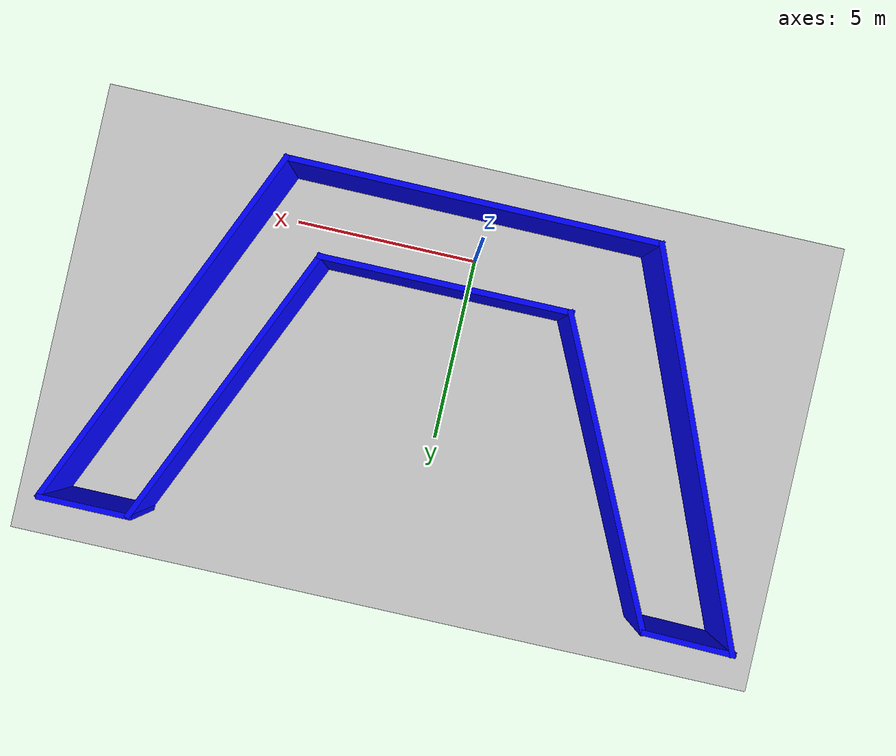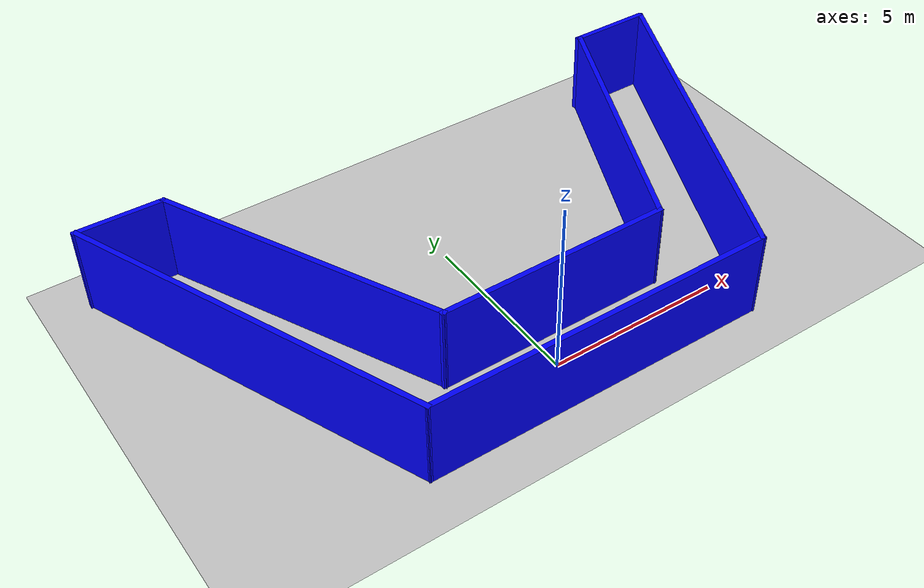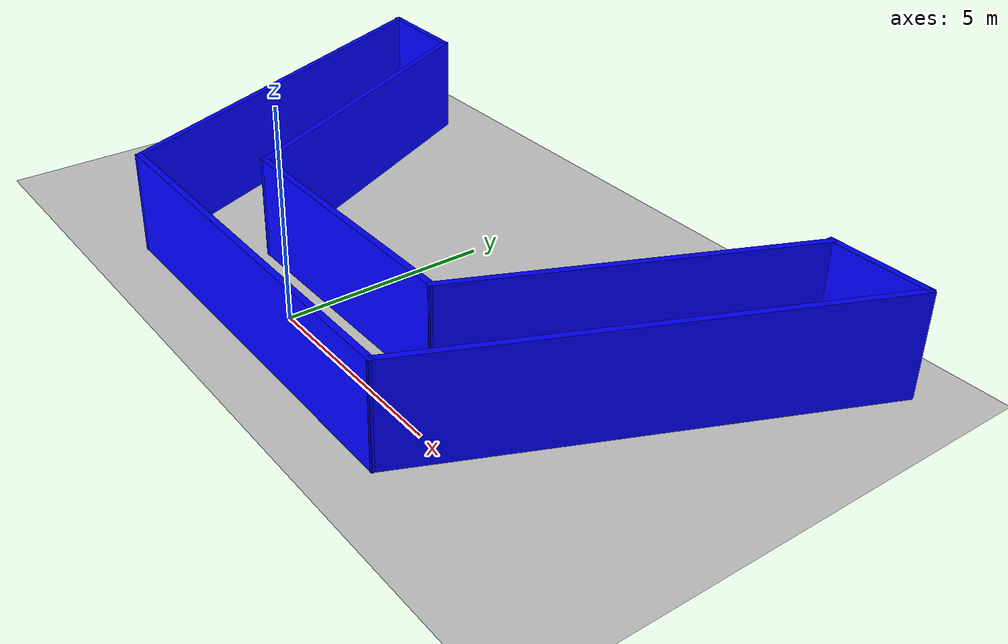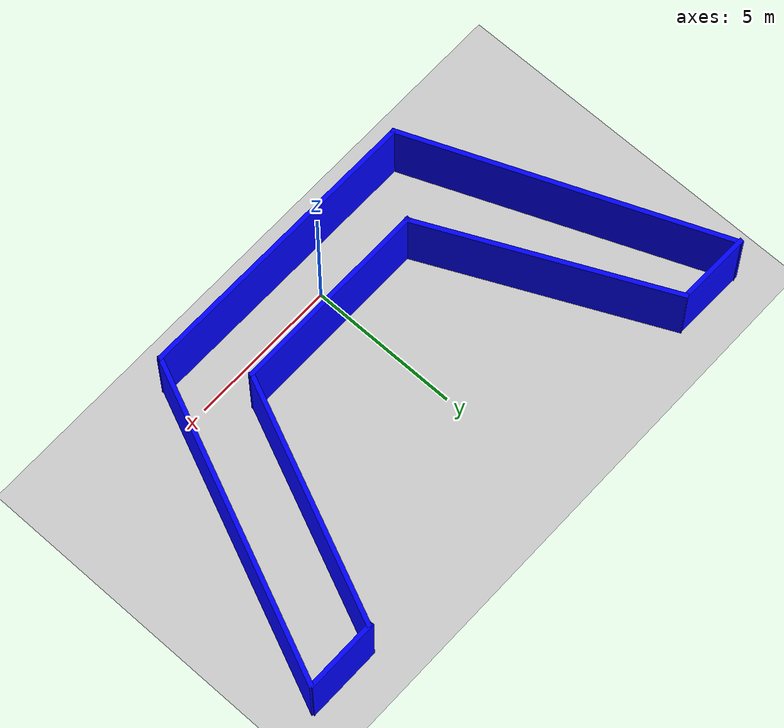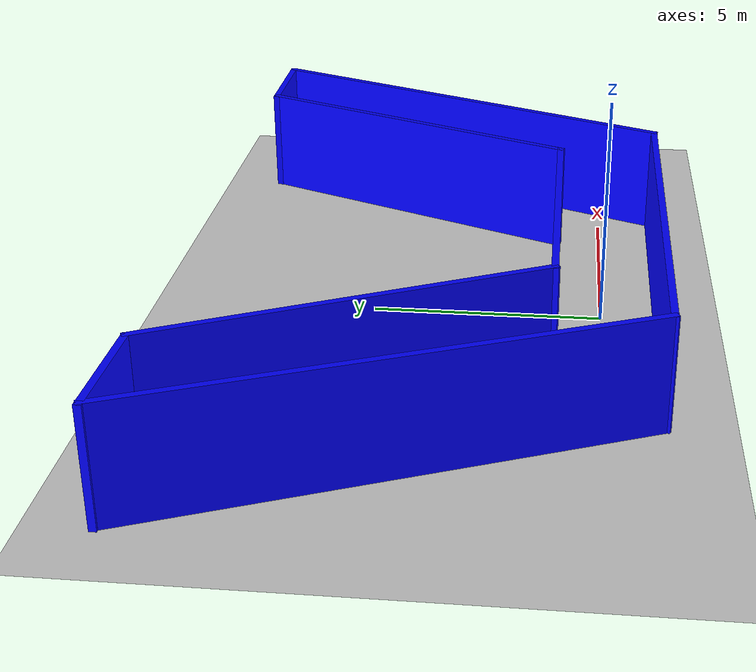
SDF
<sdf version="1.6">
 <world name="default">
  <light name="sun" type="directional">
   <pose>0 0 10 0 -0 0</pose>
   <diffuse>0.8 0.8 0.8 1</diffuse>
   <specular>0.2 0.2 0.2 1</specular>
   <attenuation>
    <range>1000</range>
    <constant>0.9</constant>
    <linear>0.01</linear>
    <quadratic>0.001</quadratic>
   </attenuation>
   <direction>-0.5 0.1 -0.9</direction>
  </light>
  <model name="ground_plane">
   <static>1</static>
   <link name="link">
    <collision name="collision">
     <geometry><plane><normal>0 0 1</normal><size>100 100</size></plane></geometry>
     <surface>
      <contact><collide_bitmask>65535</collide_bitmask></contact>
      <friction><ode><mu>100</mu><mu2>50</mu2></ode></friction>
     </surface>
    </collision>
    <visual name="visual">
     <cast_shadows>0</cast_shadows>
     <geometry><plane><normal>0 0 1</normal><size>100 100</size></plane></geometry>
     <material>
      <script><uri>file://media/materials/scripts/gazebo.material</uri><name>Gazebo/Grey</name></script>
     </material>
    </visual>
   </link>
  </model>
  <gravity>0 0 -9.8</gravity>
  <magnetic_field>6e-06 2.3e-05 -4.2e-05</magnetic_field>
  <atmosphere type="adiabatic"/>
  <physics name="default_physics" default="0" type="ode">
   <max_step_size>0.001</max_step_size>
   <real_time_factor>1</real_time_factor>
   <real_time_update_rate>1000</real_time_update_rate>
  </physics>
  <scene><ambient>0.4 0.4 0.4 1</ambient><background>0.7 0.7 0.7 1</background><shadows>1</shadows></scene>
  <spherical_coordinates>
   <surface_model>EARTH_WGS84</surface_model>
   <latitude_deg>0</latitude_deg>
   <longitude_deg>0</longitude_deg>
   <elevation>0</elevation>
   <heading_deg>0</heading_deg>
  </spherical_coordinates>
  <model name="U_model">
   <pose>0.509985 3.69366 0 0 -0 0</pose>
   <link name="Wall_0">
    <collision name="Wall_0_Collision">
     <geometry><box><size>10.8038 0.15 2.5</size></box></geometry>
     <pose>0 0 1.25 0 -0 0</pose>
    </collision>
    <visual name="Wall_0_Visual">
     <pose>0 0 1.25 0 -0 0</pose>
     <geometry><box><size>10.8038 0.15 2.5</size></box></geometry>
     <material>
      <script><uri>file://media/materials/scripts/gazebo.material</uri><name>Gazebo/Grey</name></script>
      <ambient>0 0 1 1</ambient>
     </material>
     <meta><layer>0</layer></meta>
    </visual>
    <pose>-7.06716 0.026129 0 0 -0 1.96173</pose>
   </link>
   <link name="Wall_1">
    <collision name="Wall_1_Collision">
     <geometry><box><size>2.50051 0.15 2.5</size></box></geometry>
     <pose>0 0 1.25 0 -0 0</pose>
    </collision>
    <visual name="Wall_1_Visual">
     <pose>0 0 1.25 0 -0 0</pose>
     <geometry><box><size>2.50051 0.15 2.5</size></box></geometry>
     <material>
      <script><uri>file://media/materials/scripts/gazebo.material</uri><name>Gazebo/Grey</name></script>
      <ambient>0 0 1 1</ambient>
     </material>
     <meta><layer>0</layer></meta>
    </visual>
    <pose>-7.94859 4.92541 0 0 0 -0.021883</pose>
   </link>
   <link name="Wall_2">
    <collision name="Wall_2_Collision">
     <geometry><box><size>8.53515 0.15 2.5</size></box></geometry>
     <pose>0 0 1.25 0 -0 0</pose>
    </collision>
    <visual name="Wall_2_Visual">
     <pose>0 0 1.25 0 -0 0</pose>
     <geometry><box><size>8.53515 0.15 2.5</size></box></geometry>
     <material>
      <script><uri>file://media/materials/scripts/gazebo.material</uri><name>Gazebo/Grey</name></script>
      <ambient>0 0 1 1</ambient>
     </material>
     <meta><layer>0</layer></meta>
    </visual>
    <pose>-4.94741 1.11299 0 0 0 -1.12715</pose>
   </link>
   <link name="Wall_3">
    <collision name="Wall_3_Collision">
     <geometry><box><size>6.75 0.15 2.5</size></box></geometry>
     <pose>0 0 1.25 0 -0 0</pose>
    </collision>
    <visual name="Wall_3_Visual">
     <pose>0 0 1.25 0 -0 0</pose>
     <geometry><box><size>6.75 0.15 2.5</size></box></geometry>
     <material>
      <script><uri>file://media/materials/scripts/gazebo.material</uri><name>Gazebo/Grey</name></script>
      <ambient>0 0 1 1</ambient>
     </material>
     <meta><layer>0</layer></meta>
    </visual>
    <pose>0.125605 -2.6737 0 0 -0 0</pose>
   </link>
   <link name="Wall_4">
    <collision name="Wall_4_Collision">
     <geometry><box><size>8.39714 0.15 2.5</size></box></geometry>
     <pose>0 0 1.25 0 -0 0</pose>
    </collision>
    <visual name="Wall_4_Visual">
     <pose>0 0 1.25 0 -0 0</pose>
     <geometry><box><size>8.39714 0.15 2.5</size></box></geometry>
     <material>
      <script><uri>file://media/materials/scripts/gazebo.material</uri><name>Gazebo/Grey</name></script>
      <ambient>0 0 1 1</ambient>
     </material>
     <meta><layer>0</layer></meta>
    </visual>
    <pose>5.08852 1.0997 0 0 -0 1.15571</pose>
   </link>
   <link name="Wall_5">
    <collision name="Wall_5_Collision">
     <geometry><box><size>2.5 0.15 2.5</size></box></geometry>
     <pose>0 0 1.25 0 -0 0</pose>
    </collision>
    <visual name="Wall_5_Visual">
     <pose>0 0 1.25 0 -0 0</pose>
     <geometry><box><size>2.5 0.15 2.5</size></box></geometry>
     <material>
      <script><uri>file://media/materials/scripts/gazebo.material</uri><name>Gazebo/Grey</name></script>
      <ambient>0 0 1 1</ambient>
     </material>
     <meta><layer>0</layer></meta>
    </visual>
    <pose>7.89984 4.89969 0 0 -0 0</pose>
   </link>
   <link name="Wall_6">
    <collision name="Wall_6_Collision">
     <geometry><box><size>10.8688 0.15 2.5</size></box></geometry>
     <pose>0 0 1.25 0 -0 0</pose>
    </collision>
    <visual name="Wall_6_Visual">
     <pose>0 0 1.25 0 -0 0</pose>
     <geometry><box><size>10.8688 0.15 2.5</size></box></geometry>
     <material>
      <script><uri>file://media/materials/scripts/gazebo.material</uri><name>Gazebo/Grey</name></script>
      <ambient>0 0 1 1</ambient>
     </material>
     <meta><layer>0</layer></meta>
    </visual>
    <pose>6.95703 -0.038605 0 0 0 -1.98245</pose>
   </link>
   <link name="Wall_7">
    <collision name="Wall_7_Collision">
     <geometry><box><size>10.0001 0.15 2.5</size></box></geometry>
     <pose>0 0 1.25 0 -0 0</pose>
    </collision>
    <visual name="Wall_7_Visual">
     <pose>0 0 1.25 0 -0 0</pose>
     <geometry><box><size>10.0001 0.15 2.5</size></box></geometry>
     <material>
      <script><uri>file://media/materials/scripts/gazebo.material</uri><name>Gazebo/Grey</name></script>
      <ambient>0 0 1 1</ambient>
     </material>
     <meta><layer>0</layer></meta>
    </visual>
    <pose>-0.112371 -4.92459 0 0 -0 3.13637</pose>
   </link>
   <static>1</static>
  </model>
 </world>
</sdf>
